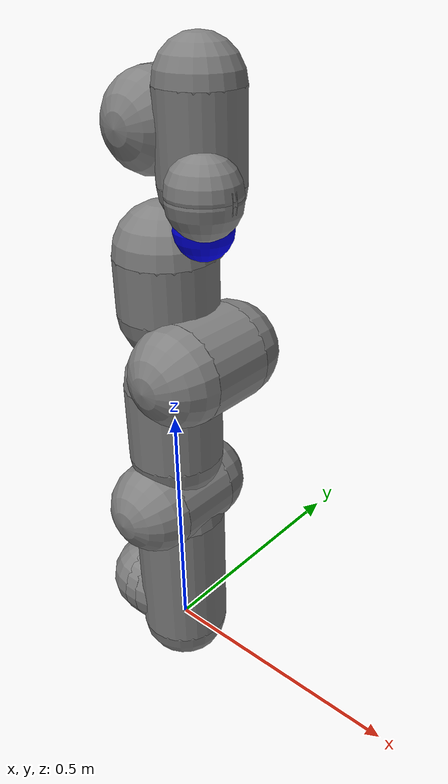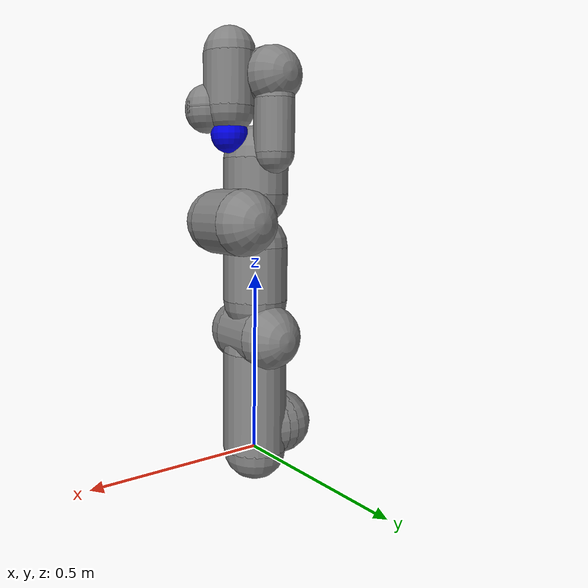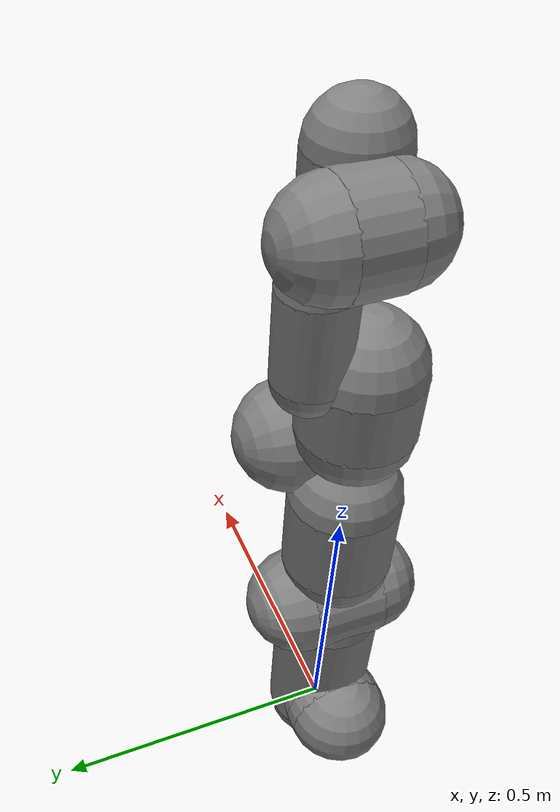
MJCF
<mujoco model="panda">
    <option timestep="0.1" integrator="RK4" gravity="0 0 -9.81" >
		<flag sensornoise="disable" energy="enable" contact="enable" />
	</option>
    <compiler angle="radian" />
    <size njmax="500" nconmax="100" />
    <worldbody>
        <geom size="0.09 0.015" pos="-0.075 0 0.06" quat="0.707107 0 0.707107 0" type="cylinder" />
        <geom size="0.09" pos="-0.06 0 0.06" />
        <geom size="0.09" pos="-0.09 0 0.06" />
        <body name="panda_link1" pos="0 0 0.333">
            <inertial pos="0 0 -0.1915" mass="13.3087" diaginertia="0.204715 0.204715 0.0489535" />
            <joint name="panda_joint1" pos="0 0 0" axis="0 0 1" limited="true" range="-2.8973 2.8973" />
            <geom size="0.09 0.1415" pos="0 0 -0.1915" type="cylinder" />
            <geom size="0.09" pos="0 0 -0.333" />
            <geom size="0.09" pos="0 0 -0.05" />
            <body name="panda_link2" pos="0 0 0" quat="0.707107 -0.707107 0 0">
                <inertial pos="0 0 0" mass="9.16088" diaginertia="0.0516216 0.0516216 0.0321547" />
                <joint name="panda_joint2" pos="0 0 0" axis="0 0 1" limited="true" range="-1.7628 1.7628" />
                <geom size="0.09 0.06" type="cylinder" />
                <geom size="0.09" pos="0 0 -0.06" />
                <geom size="0.09" pos="0 0 0.06" />
                <body name="panda_link3" pos="0 -0.316 0" quat="0.707107 0.707107 0 0">
                    <inertial pos="0 0 -0.145" mass="9.92429" diaginertia="0.0690273 0.0690273 0.0352465" />
                    <joint name="panda_joint3" pos="0 0 0" axis="0 0 1" limited="true" range="-2.8973 2.8973" />
                    <geom size="0.09 0.075" pos="0 0 -0.145" type="cylinder" />
                    <geom size="0.09" pos="0 0 -0.22" />
                    <geom size="0.09" pos="0 0 -0.07" />
                    <body name="panda_link4" pos="0.0825 0 0" quat="0.707107 0.707107 0 0">
                        <inertial pos="0 0 0" mass="9.16088" diaginertia="0.0516216 0.0516216 0.0321547" />
                        <joint name="panda_joint4" pos="0 0 0" axis="0 0 1" limited="true" range="-3.0718 -0.0698" />
                        <geom size="0.09 0.06" type="cylinder" />
                        <geom size="0.09" pos="0 0 0.06" />
                        <geom size="0.09" pos="0 0 -0.06" />
                        <body name="panda_link5" pos="-0.0825 0.384 0" quat="0.707107 -0.707107 0 0">
                            <inertial pos="0 0.0191577 -0.228869" quat="0.980145 -0.198283 0 0" mass="11.3762" diaginertia="0.1023 0.0981299 0.0379623" />
                            <joint name="panda_joint5" pos="0 0 0" axis="0 0 1" limited="true" range="-2.8973 2.8973" />
                            <geom size="0.09 0.05" pos="0 0 -0.26" type="cylinder" />
                            <geom size="0.09" pos="0 0 -0.31" />
                            <geom size="0.09" pos="0 0 -0.21" />
                            <geom size="0.055 0.07" pos="0 0.08 -0.13" type="cylinder" />
                            <geom size="0.055" pos="0 0.08 -0.06" />
                            <geom size="0.055" pos="0 0.08 -0.2" />
                            <body name="panda_link6" pos="0 0 0" quat="0.707107 0.707107 0 0">
                                <inertial pos="0 0 -0.03" mass="5.89782" diaginertia="0.021275 0.021275 0.0161278" />
                                <joint name="panda_joint6" pos="0 0 0" axis="0 0 1" limited="true" range="-0.0175 3.7525" />
                                <geom size="0.08 0.04" pos="0 0 -0.03" type="cylinder" />
                                <geom size="0.08" pos="0 0 0.01" />
                                <geom size="0.08" pos="0 0 -0.07" />
                                <body name="panda_link7" pos="0.088 0 0" quat="0.707107 0.707107 0 0">
                                    <inertial pos="0.0117274 0.0117274 0.0299144" quat="0.910272 -0.140164 0.0571282 -0.385351" mass="6.9513" diaginertia="0.0408884 0.0377691 0.0167385" />
                                    <joint name="panda_joint7" pos="0 0 0" axis="0 0 1" limited="true" range="-2.8973 2.8973" />
                                    <geom size="0.07 0.07" pos="0 0 0.01" type="cylinder" />
                                    <geom size="0.07" pos="0 0 0.08" />
                                    <geom size="0.07" pos="0 0 -0.06" />
                                    <geom size="0.06 0.005" pos="0.0424 0.0424 0.082" quat="0.5 0.5 0.5 -0.5" type="cylinder" />
                                    <geom size="0.06" pos="0.0424 0.0424 0.087" />
                                    <geom size="0.06" pos="0.0424 0.0424 0.077" />
                                    <site name="endeff" pos="0 0 0.15" rgba="0 0 .9 1" size="0.05"/>
                                </body>
                            </body>
                        </body>
                    </body>
                </body>
            </body>
        </body>
    </worldbody>

    <contact>
        <exclude body1="world" body2="panda_link1"/>
        <exclude body1="world" body2="panda_link2"/>
        <exclude body1="world" body2="panda_link3"/>
        <exclude body1="world" body2="panda_link4"/>
        <exclude body1="world" body2="panda_link5"/>
        <exclude body1="world" body2="panda_link6"/>
        <exclude body1="world" body2="panda_link7"/>
        <exclude body1="panda_link1" body2="panda_link2"/>
        <exclude body1="panda_link1" body2="panda_link3"/>
        <exclude body1="panda_link1" body2="panda_link4"/>
        <exclude body1="panda_link1" body2="panda_link5"/>
        <exclude body1="panda_link1" body2="panda_link6"/>
        <exclude body1="panda_link1" body2="panda_link7"/>
        <exclude body1="panda_link2" body2="panda_link3"/>
        <exclude body1="panda_link2" body2="panda_link4"/>
        <exclude body1="panda_link2" body2="panda_link5"/>
        <exclude body1="panda_link2" body2="panda_link6"/>
        <exclude body1="panda_link2" body2="panda_link7"/>
        <exclude body1="panda_link3" body2="panda_link4"/>
        <exclude body1="panda_link3" body2="panda_link5"/>
        <exclude body1="panda_link3" body2="panda_link6"/>
        <exclude body1="panda_link3" body2="panda_link7"/>
        <exclude body1="panda_link4" body2="panda_link5"/>
        <exclude body1="panda_link4" body2="panda_link6"/>
        <exclude body1="panda_link4" body2="panda_link7"/>
        <exclude body1="panda_link5" body2="panda_link6"/>
        <exclude body1="panda_link5" body2="panda_link7"/>
        <exclude body1="panda_link6" body2="panda_link7"/>
    </contact>

    <sensor>
		<framepos objtype="site" objname="endeff"/>
		<framelinvel objtype="site" objname="endeff"/>
        <frameangvel objtype="site" objname="endeff"/>
        <framelinacc objtype="site" objname="endeff"/>
        <frameangacc objtype="site" objname="endeff"/>
	</sensor>
</mujoco>
